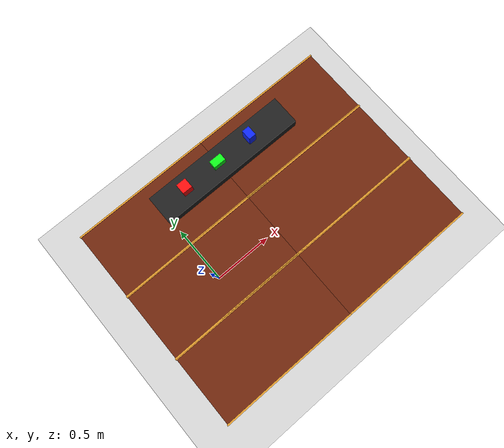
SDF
<sdf version='1.9'>
  <world name='empty_world'>
    <gravity>0 0 -9.8</gravity>
    <magnetic_field>6e-06 2.3e-05 -4.2e-05</magnetic_field>
    <atmosphere type='adiabatic'/>
    <physics type='ode'>
      <max_step_size>0.001</max_step_size>
      <real_time_factor>1</real_time_factor>
      <real_time_update_rate>1000</real_time_update_rate>
    </physics>
    <scene>
      <ambient>0.4 0.4 0.4 1</ambient>
      <background>0.7 0.7 0.7 1</background>
      <shadows>true</shadows>
    </scene>

  <!-- ================= CONVEYOR ================= -->
  <!--
    TrackController applies contact-surface motion along the belt link's +x axis.
    gazebo_launch.py / gazebo_launch.xml publish the initial speed command.
  -->
  <model name="conveyor">
    <!-- Bottom of the belt rests on the z=0.35 tabletop. -->
    <pose>0.6 0.6 0.39 0 0 0</pose>
    <static>true</static>
    <link name="belt_link">
      <collision name="belt_collision">
        <geometry>
          <box>
            <size>1.2 0.24 0.08</size>
          </box>
        </geometry>
        <surface>
          <friction>
            <ode>
              <mu>0.8</mu>
              <mu2>100</mu2>
              <fdir1>0 1 0</fdir1>
            </ode>
          </friction>
        </surface>
      </collision>
      <visual name="belt_visual">
        <geometry>
          <box>
            <size>1.2 0.24 0.08</size>
          </box>
        </geometry>
        <material>
          <ambient>0.08 0.08 0.08 1</ambient>
          <diffuse>0.12 0.12 0.12 1</diffuse>
          <specular>0.25 0.25 0.25 1</specular>
        </material>
      </visual>
    </link>
    <plugin filename="gz-sim-track-controller-system"
            name="gz::sim::systems::TrackController">
      <link>belt_link</link>
      <min_velocity>-0.5</min_velocity>
      <max_velocity>0.5</max_velocity>
      <odometry_publish_frequency>10</odometry_publish_frequency>
    </plugin>
  </model>

  <!-- ================= RED BOX ================= -->
  <model name="red_box">
    <pose>0.25 0.6 0.47 0 0 0</pose>
    <static>false</static>
    <link name="red_link">
      <inertial>
        <mass>0.10</mass>
        <inertia>
          <ixx>0.00011</ixx><iyy>0.00011</iyy><izz>0.00008</izz>
        </inertia>
      </inertial>
      <collision name="red_collision">
        <geometry>
          <box>
            <size>0.08 0.08 0.08</size>
          </box>
        </geometry>
      </collision>
      <visual name="red_visual">
        <geometry>
          <box>
            <size>0.08 0.08 0.08</size>
          </box>
        </geometry>
        <material>
          <ambient>1 0.05 0.05 1</ambient>
          <diffuse>1 0.05 0.05 1</diffuse>
        </material>
      </visual>
    </link>
  </model>

  <!-- ================= GREEN BOX ================= -->
  <model name="green_box">
    <pose>0.55 0.6 0.46 0 0 0</pose>
    <static>false</static>
    <link name="green_link">
      <inertial>
        <mass>0.12</mass>
        <inertia>
          <ixx>0.00007</ixx><iyy>0.00012</iyy><izz>0.00013</izz>
        </inertia>
      </inertial>
      <collision name="green_collision">
        <geometry>
          <box>
            <size>0.10 0.06 0.06</size>
          </box>
        </geometry>
      </collision>
      <visual name="green_visual">
        <geometry>
          <box>
            <size>0.10 0.06 0.06</size>
          </box>
        </geometry>
        <material>
          <ambient>0.05 1 0.10 1</ambient>
          <diffuse>0.05 1 0.10 1</diffuse>
        </material>
      </visual>
    </link>
  </model>

  <!-- ================= BLUE BOX ================= -->
  <model name="blue_box">
    <pose>0.85 0.6 0.48 0 0 0</pose>
    <static>false</static>
    <link name="blue_link">
      <inertial>
        <mass>0.08</mass>
        <inertia>
          <ixx>0.00011</ixx><iyy>0.00009</iyy><izz>0.00007</izz>
        </inertia>
      </inertial>
      <collision name="blue_collision">
        <geometry>
          <box>
            <size>0.06 0.08 0.10</size>
          </box>
        </geometry>
      </collision>
      <visual name="blue_visual">
        <geometry>
          <box>
            <size>0.06 0.08 0.10</size>
          </box>
        </geometry>
        <material>
          <ambient>0.05 0.15 1 1</ambient>
          <diffuse>0.05 0.15 1 1</diffuse>
        </material>
      </visual>
    </link>
  </model>

    <!-- Six gap-free designer tables in a 3-row x 2-column layout. -->
    <!-- Rear row (behind the Panda, replacing the trash can). -->
    <include>
      <uri>model://fancy_table</uri>
      <name>fancy_table_5</name>
      <pose>0 -0.56 0 0 0 0</pose>
    </include>
    <include>
      <uri>model://fancy_table</uri>
      <name>fancy_table_6</name>
      <pose>1.12 -0.56 0 0 0 0</pose>
    </include>

    <!-- Middle row containing the Panda base. -->
    <include>
      <uri>model://fancy_table</uri>
      <name>fancy_table_1</name>
      <pose>0 0 0 0 0 0</pose>
    </include>
    <include>
      <uri>model://fancy_table</uri>
      <name>fancy_table_2</name>
      <pose>1.12 0 0 0 0 0</pose>
    </include>

    <!-- Front row containing the conveyor. -->
    <include>
      <uri>model://fancy_table</uri>
      <name>fancy_table_3</name>
      <pose>1.12 0.56 0 0 0 0</pose>
    </include>
    <include>
      <uri>model://fancy_table</uri>
      <name>fancy_table_4</name>
      <pose>0 0.56 0 0 0 0</pose>
    </include>
    <model name='ground_plane'>
      <static>true</static>
      <link name='link'>
        <collision name='collision'>
          <geometry>
            <plane>
              <normal>0 0 1</normal>
              <size>1 1</size>
            </plane>
          </geometry>
          <surface>
            <friction>
              <ode/>
            </friction>
            <bounce/>
            <contact/>
          </surface>
        </collision>
        <visual name='visual'>
          <geometry>
            <plane>
              <normal>0 0 1</normal>
              <size>100 100</size>
            </plane>
          </geometry>
          <material>
            <ambient>0.8 0.8 0.8 1</ambient>
            <diffuse>0.8 0.8 0.8 1</diffuse>
            <specular>0.8 0.8 0.8 1</specular>
          </material>
        </visual>
        <pose>0 0 0 0 -0 0</pose>
        <inertial>
          <pose>0 0 0 0 -0 0</pose>
          <mass>1</mass>
          <inertia>
            <ixx>1</ixx>
            <ixy>0</ixy>
            <ixz>0</ixz>
            <iyy>1</iyy>
            <iyz>0</iyz>
            <izz>1</izz>
          </inertia>
        </inertial>
        <enable_wind>false</enable_wind>
      </link>
      <pose>0 0 0 0 -0 0</pose>
      <self_collide>false</self_collide>
    </model>
    <light name='sun' type='directional'>
      <pose>0 0 10 0 -0 0</pose>
      <cast_shadows>true</cast_shadows>
      <intensity>1</intensity>
      <direction>-0.5 0.1 -0.9</direction>
      <diffuse>0.8 0.8 0.8 1</diffuse>
      <specular>0.2 0.2 0.2 1</specular>
      <attenuation>
        <range>1000</range>
        <linear>0.01</linear>
        <constant>0.90000000000000002</constant>
        <quadratic>0.001</quadratic>
      </attenuation>
      <spot>
        <inner_angle>0</inner_angle>
        <outer_angle>0</outer_angle>
        <falloff>0</falloff>
      </spot>
    </light>
  </world>
</sdf>

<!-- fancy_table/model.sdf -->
<sdf version="1.9">
  <model name="fancy_table">
    <static>true</static>
    <link name="table">
      <!-- Simple collision shapes keep the table stable and inexpensive to simulate. -->
      <collision name="top_collision">
        <!-- Top surface is z=0.35, matching panda_link0 in arm.xacro. -->
        <pose>0 0 0.315 0 0 0</pose>
        <geometry><box><size>1.12 0.56 0.07</size></box></geometry>
      </collision>
      <collision name="left_leg_collision">
        <pose>-0.43 0 0.1525 0 0 0</pose>
        <geometry><box><size>0.06 0.44 0.305</size></box></geometry>
      </collision>
      <collision name="right_leg_collision">
        <pose>0.43 0 0.1525 0 0 0</pose>
        <geometry><box><size>0.06 0.44 0.305</size></box></geometry>
      </collision>

      <!-- Warm walnut top. -->
      <visual name="walnut_top">
        <pose>0 0 0.315 0 0 0</pose>
        <geometry><box><size>1.12 0.56 0.07</size></box></geometry>
        <material>
          <ambient>0.24 0.075 0.025 1</ambient>
          <diffuse>0.42 0.14 0.045 1</diffuse>
          <specular>0.22 0.16 0.10 1</specular>
        </material>
      </visual>

      <!-- Thin brass edge bands give the top a more finished appearance. -->
      <visual name="front_brass_trim">
        <pose>0 -0.283 0.315 0 0 0</pose>
        <geometry><box><size>1.13 0.012 0.075</size></box></geometry>
        <material>
          <ambient>0.55 0.32 0.07 1</ambient>
          <diffuse>0.85 0.58 0.16 1</diffuse>
          <specular>0.95 0.80 0.35 1</specular>
        </material>
      </visual>
      <visual name="back_brass_trim">
        <pose>0 0.283 0.315 0 0 0</pose>
        <geometry><box><size>1.13 0.012 0.075</size></box></geometry>
        <material>
          <ambient>0.55 0.32 0.07 1</ambient>
          <diffuse>0.85 0.58 0.16 1</diffuse>
          <specular>0.95 0.80 0.35 1</specular>
        </material>
      </visual>

      <!-- Matte-black steel pedestal legs and lower crossbar. -->
      <visual name="left_leg">
        <pose>-0.43 0 0.1525 0 0 0</pose>
        <geometry><box><size>0.06 0.44 0.305</size></box></geometry>
        <material>
          <ambient>0.025 0.03 0.035 1</ambient>
          <diffuse>0.055 0.065 0.075 1</diffuse>
          <specular>0.35 0.38 0.40 1</specular>
        </material>
      </visual>
      <visual name="right_leg">
        <pose>0.43 0 0.1525 0 0 0</pose>
        <geometry><box><size>0.06 0.44 0.305</size></box></geometry>
        <material>
          <ambient>0.025 0.03 0.035 1</ambient>
          <diffuse>0.055 0.065 0.075 1</diffuse>
          <specular>0.35 0.38 0.40 1</specular>
        </material>
      </visual>
      <visual name="lower_crossbar">
        <pose>0 0 0.10 0 0 0</pose>
        <geometry><box><size>0.86 0.045 0.045</size></box></geometry>
        <material>
          <ambient>0.025 0.03 0.035 1</ambient>
          <diffuse>0.055 0.065 0.075 1</diffuse>
          <specular>0.35 0.38 0.40 1</specular>
        </material>
      </visual>

      <!-- Brass feet echo the trim around the tabletop. -->
      <visual name="left_foot">
        <pose>-0.43 0 0.035 0 0 0</pose>
        <geometry><box><size>0.09 0.48 0.07</size></box></geometry>
        <material>
          <ambient>0.55 0.32 0.07 1</ambient>
          <diffuse>0.85 0.58 0.16 1</diffuse>
          <specular>0.95 0.80 0.35 1</specular>
        </material>
      </visual>
      <visual name="right_foot">
        <pose>0.43 0 0.035 0 0 0</pose>
        <geometry><box><size>0.09 0.48 0.07</size></box></geometry>
        <material>
          <ambient>0.55 0.32 0.07 1</ambient>
          <diffuse>0.85 0.58 0.16 1</diffuse>
          <specular>0.95 0.80 0.35 1</specular>
        </material>
      </visual>
    </link>
  </model>
</sdf>
